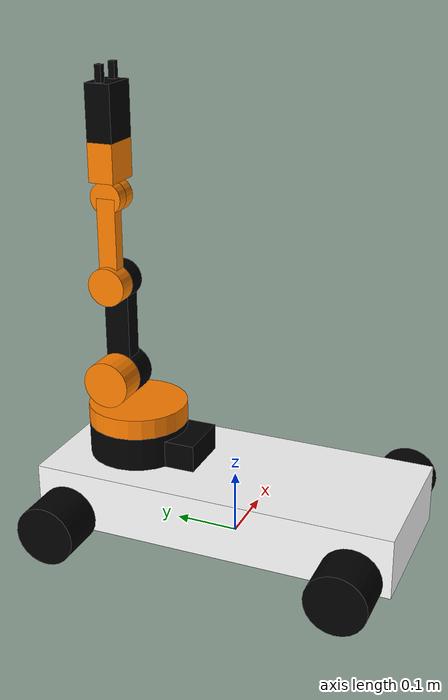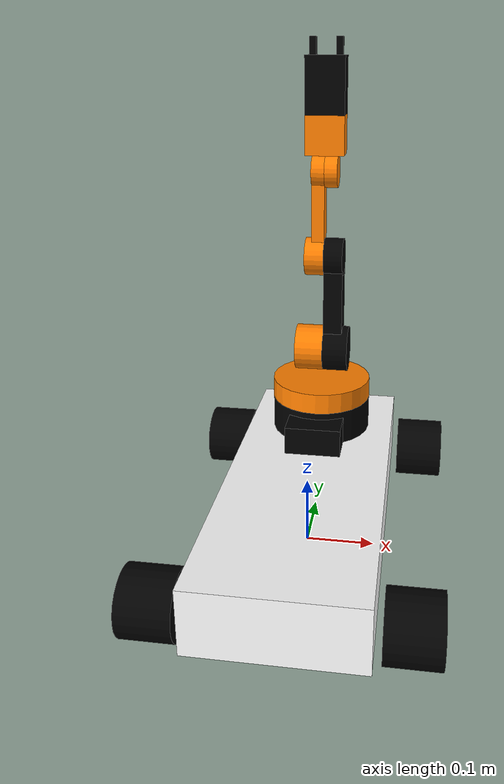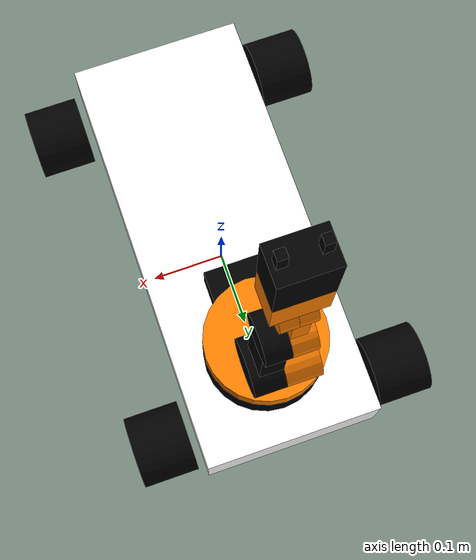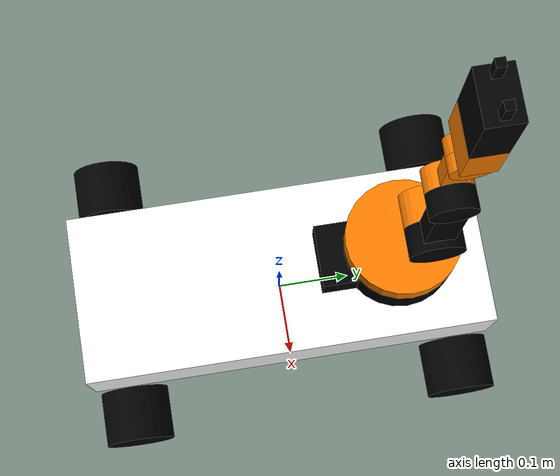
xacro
<?xml version="1.0"?>
<robot name="youbot" xmlns:xacro="http://www.ros.org/wiki/xacro">

  <xacro:include filename="youbot_arm.urdf.xacro" />

  <link name="base_link">
    <visual>
      <geometry>
        <box size="0.233 0.57 0.094"/>
      </geometry>
      <origin rpy="0 0 0" xyz="0 0 0.067"/>
      <material name="white"/>
    </visual>
  </link>

  <joint name="rf_motor" type="continuous">
    <parent link="base_link"/>
    <child link="rf_wheel"/>
    <origin xyz="0.117 0.228 0.047"/>
    <axis xyz="1 0 0"/>
  </joint>

  <link name="rf_wheel">
    <visual>
      <geometry>
        <cylinder length="0.073" radius="0.047"/>
      </geometry>
      <origin rpy="0 1.57075 0" xyz="0.0465 0 0"/>
      <material name="black"/>
    </visual>
  </link>

  <joint name="lf_motor" type="continuous">
    <parent link="base_link"/>
    <child link="lf_wheel"/>
    <origin xyz="-0.117 0.228 0.047"/>
    <axis xyz="1 0 0"/>
  </joint>

  <link name="lf_wheel">
    <visual>
      <geometry>
        <cylinder length="0.073" radius="0.047"/>
      </geometry>
      <origin rpy="0 1.57075 0" xyz="-0.0465 0 0"/>
      <material name="black"/>
    </visual>
  </link>

  <joint name="rr_motor" type="continuous">
    <parent link="base_link"/>
    <child link="rr_wheel"/>
    <origin xyz="0.117 -0.228 0.047"/>
    <axis xyz="1 0 0"/>
  </joint>

  <link name="rr_wheel">
    <visual>
      <geometry>
        <cylinder length="0.073" radius="0.047"/>
      </geometry>
      <origin rpy="0 1.57075 0" xyz="0.0465 0 0"/>
      <material name="black"/>
    </visual>
  </link>

  <joint name="lr_motor" type="continuous">
    <parent link="base_link"/>
    <child link="lr_wheel"/>
    <origin xyz="-0.117 -0.228 0.047"/>
    <axis xyz="1 0 0"/>
  </joint>

  <link name="lr_wheel">
    <visual>
      <geometry>
        <cylinder length="0.073" radius="0.047"/>
      </geometry>
      <origin rpy="0 1.57075 0" xyz="-0.0465 0 0"/>
      <material name="black"/>
    </visual>
  </link>

  <joint name="youbot_base" type="fixed">
    <parent link="base_link"/>
    <child link="arm_base_part1"/>
    <origin xyz="0 0.166 0.1" rpy="0 0 0"/>
  </joint>

</robot>

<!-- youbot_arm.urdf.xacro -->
<robot name="youbot_arm" xmlns:xacro="http://www.ros.org/wiki/xacro">

  <xacro:include filename="colors.urdf.xacro"/>

  <xacro:include filename="arm_base.urdf.xacro"/>

  <joint name="joint1" type="revolute">
      <parent link="arm_base_part1"/>
      <child link="link1_part1"/>
      <origin xyz="0 0 0.067" rpy="0 0 1.57075"/>
      <axis xyz="0 0 1"/>
      <limit lower="-2.95" upper="2.95" effort="0.5" velocity="0.5"/>
  </joint>

  <xacro:include filename="link1.urdf.xacro"/>

  <joint name="joint2" type="revolute">
      <parent link="link1_part1"/>
      <child link="link2_part1"/>
      <origin xyz="0.033 0 0.069" rpy="0 0 -1.57079"/>
      <axis xyz="1 0 0"/>
      <limit lower="-1.57" upper="1.31" effort="0.5" velocity="0.5"/>
  </joint>

  <xacro:include filename="link2.urdf.xacro"/>

  <joint name="joint3" type="revolute">
      <parent link="link2_part1"/>
      <child link="link3_part1"/>
      <origin xyz="0 0 0.155" rpy="0 0 0"/>
      <axis xyz="1 0 0"/>
      <limit lower="-2.28" upper="2.28" effort="0.5" velocity="0.5"/>
  </joint>

  <xacro:include filename="link3.urdf.xacro"/>

  <joint name="joint4" type="revolute">
      <parent link="link3_part1"/>
      <child link="link4_part1"/>
      <origin xyz="0 0 0.13483" rpy="0 0 0"/>
      <axis xyz="1 0 0"/>
      <limit lower="-1.78" upper="1.78" effort="0.5" velocity="0.5"/>
  </joint>

  <xacro:include filename="link4.urdf.xacro"/>

  <joint name="joint5" type="revolute">
      <parent link="link4_part1"/>
      <child link="link5_part1"/>
      <origin xyz="0 0 0.084" rpy="0 0 0"/>
      <axis xyz="0 0 1"/>
      <limit lower="-1.57" upper="1.57" effort="0.5" velocity="0.5"/>
  </joint>

  <xacro:include filename="link5.urdf.xacro"/>

</robot>

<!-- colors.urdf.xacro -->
<robot name="colors" xmlns:xacro="http://www.ros.org/wiki/xacro">

    <material name="black">
        <color rgba="0 0 0 1"/>
    </material>

    <material name="orange">
        <color rgba="1 0.5 0 1"/>
    </material>

    <material name="red">
        <color rgba="1 0 0 1"/>
    </material>

    <material name="green">
        <color rgba="0 1 0 1"/>
    </material>

    <material name="blue">
        <color rgba="0 0 1 1"/>
    </material>

    <material name="yellow">
        <color rgba="1 1 0 1"/>
    </material>

    <material name="white">
        <color rgba="1 1 1 1"/>
    </material>

</robot>

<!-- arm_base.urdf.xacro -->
<robot xmlns:xacro="http://www.ros.org/wiki/xacro">

  <link name="arm_base_part1">
    <visual>
      <geometry>
        <box size="0.085 0.113 0.057"/>
      </geometry>
      <origin xyz="0 -0.0565 0.0285" rpy="0 0 0"/>
      <material name="black"/>
    </visual>
  </link>

  <link name="arm_base_part2">
    <visual>
      <geometry>
        <cylinder length="0.067" radius="0.078"/>
      </geometry>
      <origin xyz="0 0 0.0335" rpy="0 0 0"/>
      <material name="black"/>
    </visual>
  </link>

  <joint name="arm_base_fixed" type="fixed">
    <parent link="arm_base_part1"/>
    <child link="arm_base_part2"/>
    <origin xyz="0 0 0" rpy="0 0 0"/>
  </joint>
</robot>

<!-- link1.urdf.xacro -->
<robot xmlns:xacro="http://www.ros.org/wiki/xacro">

  <link name="link1_part1">
    <visual>
      <geometry>
        <cylinder length="0.032" radius="0.078"/>
      </geometry>
      <origin xyz="0 0 0.016" rpy="0 0 0"/>
      <material name="orange"/>
    </visual>
  </link>

  <link name="link1_part2">
    <visual>
      <geometry>
        <cylinder length="0.045" radius="0.037"/>
      </geometry>
      <origin xyz="0 0.0225 0" rpy="1.57075 0 0"/>
      <material name="orange"/>
    </visual>
  </link>

  <joint name="link1_fixed" type="fixed">
    <parent link="link1_part1"/>
    <child link="link1_part2"/>
    <origin xyz="0.033 0 0.069" rpy="0 0 0"/>
  </joint>
</robot>

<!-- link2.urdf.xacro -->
<robot xmlns:xacro="http://www.ros.org/wiki/xacro">

  <link name="link2_part1">
    <visual>
      <geometry>
        <cylinder length="0.04" radius="0.037"/>
      </geometry>
      <origin xyz="0.02 0 0" rpy="0 1.57075 0"/>
      <material name="black"/>
    </visual>
  </link>

  <joint name="link2_fixed1" type="fixed">
    <parent link="link2_part1"/>
    <child link="link2_part2"/>
    <origin xyz="0 0 0" rpy="0 0 0"/>
  </joint>

  <link name="link2_part2">
    <visual>
      <geometry>
        <box size="0.03 0.04 0.155"/>
      </geometry>
      <origin xyz="0.015 0 0.0775" rpy="0 0 0"/>
      <material name="black"/>
    </visual>
  </link>

  <joint name="link2_fixed2" type="fixed">
    <parent link="link2_part2"/>
    <child link="link2_part3"/>
    <origin xyz="0 0 0.155" rpy="0 0 0"/>
  </joint>

  <link name="link2_part3">
    <visual>
      <geometry>
        <cylinder length="0.03" radius="0.03"/>
      </geometry>
      <origin xyz="0.015 0 0" rpy="0 1.57075 0"/>
      <material name="black"/>
    </visual>
  </link>
</robot>

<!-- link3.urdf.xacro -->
<robot xmlns:xacro="http://www.ros.org/wiki/xacro">

  <link name="link3_part1">
    <visual>
      <geometry>
        <cylinder length="0.03" radius="0.03"/>
      </geometry>
      <origin xyz="-0.015 0 0" rpy="0 1.57075 0"/>
      <material name="orange"/>
    </visual>
  </link>

  <joint name="link3_fixed1" type="fixed">
    <parent link="link3_part1"/>
    <child link="link3_part2"/>
    <origin xyz="0 0 0" rpy="0 0 0"/>
  </joint>

  <link name="link3_part2">
    <visual>
      <geometry>
        <box size="0.02 0.03 0.13483"/>
      </geometry>
      <origin xyz="-0.01 0 0.067415" rpy="0 0 0"/>
      <material name="orange"/>
    </visual>
  </link>

  <joint name="link3_fixed2" type="fixed">
    <parent link="link3_part2"/>
    <child link="link3_part3"/>
    <origin xyz="0 0 0.13483" rpy="0 0 0"/>
  </joint>

  <link name="link3_part3">
    <visual>
      <geometry>
        <cylinder length="0.02" radius="0.025"/>
      </geometry>
      <origin xyz="-0.01 0 0" rpy="0 1.57075 0"/>
      <material name="orange"/>
    </visual>
  </link>
</robot>

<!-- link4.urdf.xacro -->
<robot xmlns:xacro="http://www.ros.org/wiki/xacro">

  <link name="link4_part1">
    <visual>
      <geometry>
        <cylinder length="0.02" radius="0.025"/>
      </geometry>
      <origin xyz="0.01 0 0" rpy="0 1.57075 0"/>
      <material name="orange"/>
    </visual>
  </link>

  <link name="link4_part2">
    <visual>
      <geometry>
        <box size="0.06 0.04 0.059"/>
      </geometry>
      <origin xyz="0 0 0.0295" rpy="0 0 0"/>
      <material name="orange"/>
    </visual>
  </link>

  <joint name="link4_fixed" type="fixed">
    <parent link="link4_part1"/>
    <child link="link4_part2"/>
    <origin xyz="0 0 0.025" rpy="0 0 0"/>
  </joint>
</robot>

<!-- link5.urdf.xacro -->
<robot xmlns:xacro="http://www.ros.org/wiki/xacro">

  <link name="link5_part1">
    <visual>
      <geometry>
        <box size="0.06 0.04 0.08465"/>
      </geometry>
      <origin xyz="0 0 0.042325" rpy="0 0 0"/>
      <material name="black"/>
    </visual>
  </link>

  <joint name="link5_fixed1" type="fixed">
    <parent link="link5_part1"/>
    <child link="link5_part2"/>
    <origin xyz="0.02 0 0.06" rpy="0 0 0"/>
  </joint>

  <link name="link5_part2">
    <visual>
      <geometry>
        <box size="0.01 0.01 0.05"/>
      </geometry>
      <origin xyz="0 0 0.025" rpy="0 0 0"/>
      <material name="black"/>
    </visual>
  </link>

  <joint name="link5_fixed2" type="fixed">
    <parent link="link5_part1"/>
    <child link="link5_part3"/>
    <origin xyz="-0.02 0 0.06" rpy="0 0 0"/>
  </joint>

  <link name="link5_part3">
    <visual>
      <geometry>
        <box size="0.01 0.01 0.05"/>
      </geometry>
      <origin xyz="0 0 0.025" rpy="0 0 0"/>
      <material name="black"/>
    </visual>
  </link>
</robot>
